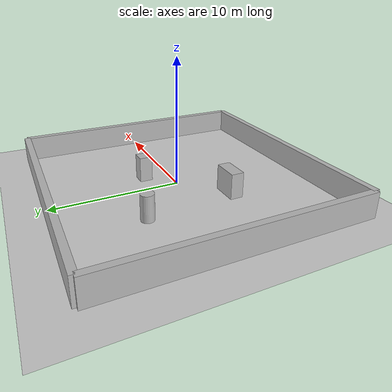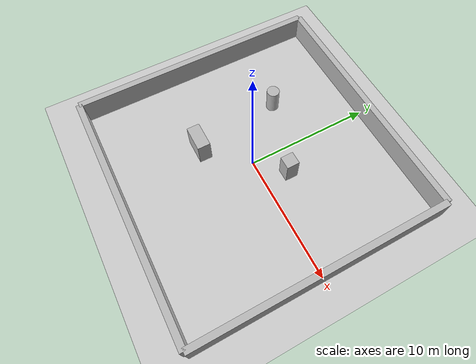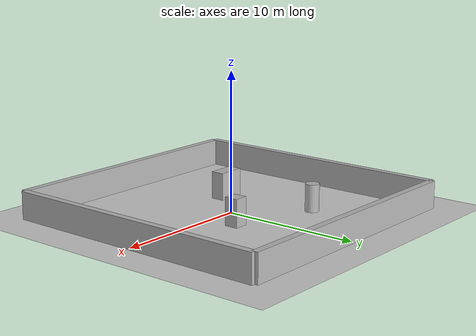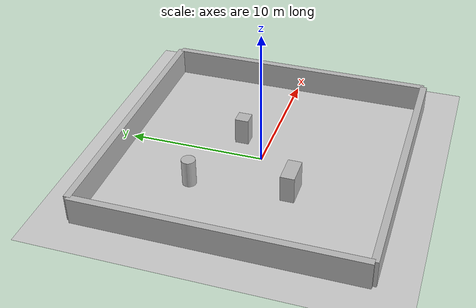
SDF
<?xml version="1.0" ?>
<sdf version="1.6">
  <world name="default">
    <include>
      <uri>model://sun</uri>
    </include>
    <include>
      <uri>model://ground_plane</uri>
    </include>

    <!-- Outer walls -->
    <model name="wall_1">
      <pose>0 10 1 0 0 0</pose>
      <static>true</static>
      <link name="link">
        <collision name="collision"><geometry><box><size>20 0.5 2</size></box></geometry></collision>
        <visual name="visual"><geometry><box><size>20 0.5 2</size></box></geometry></visual>
      </link>
    </model>
    <model name="wall_2">
      <pose>0 -10 1 0 0 0</pose>
      <static>true</static>
      <link name="link">
        <collision name="collision"><geometry><box><size>20 0.5 2</size></box></geometry></collision>
        <visual name="visual"><geometry><box><size>20 0.5 2</size></box></geometry></visual>
      </link>
    </model>
    <model name="wall_3">
      <pose>10 0 1 0 0 1.5707</pose>
      <static>true</static>
      <link name="link">
        <collision name="collision"><geometry><box><size>20 0.5 2</size></box></geometry></collision>
        <visual name="visual"><geometry><box><size>20 0.5 2</size></box></geometry></visual>
      </link>
    </model>
    <model name="wall_4">
      <pose>-10 0 1 0 0 1.5707</pose>
      <static>true</static>
      <link name="link">
        <collision name="collision"><geometry><box><size>20 0.5 2</size></box></geometry></collision>
        <visual name="visual"><geometry><box><size>20 0.5 2</size></box></geometry></visual>
      </link>
    </model>

    <!-- Inner Obstacles -->
    <model name="obstacle_1">
      <pose>2 2 1 0 0 0</pose>
      <static>true</static>
      <link name="link">
        <collision name="collision"><geometry><box><size>1 1 2</size></box></geometry></collision>
        <visual name="visual"><geometry><box><size>1 1 2</size></box></geometry></visual>
      </link>
    </model>
    <model name="obstacle_2">
      <pose>-3 -3 1 0 0 0</pose>
      <static>true</static>
      <link name="link">
        <collision name="collision"><geometry><box><size>2 1 2</size></box></geometry></collision>
        <visual name="visual"><geometry><box><size>2 1 2</size></box></geometry></visual>
      </link>
    </model>
    <model name="obstacle_3">
      <pose>-4 4 1 0 0 0</pose>
      <static>true</static>
      <link name="link">
        <collision name="collision"><geometry><cylinder><radius>0.5</radius><length>2</length></cylinder></geometry></collision>
        <visual name="visual"><geometry><cylinder><radius>0.5</radius><length>2</length></cylinder></geometry></visual>
      </link>
    </model>

  </world>
</sdf>
